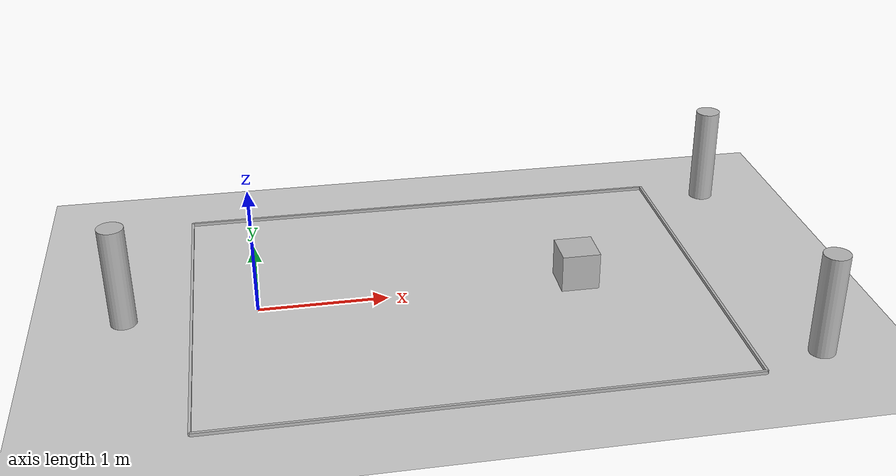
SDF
<?xml version="1.0" ?>
<sdf version="1.6">
  <world name="default">
    <!-- Lighting -->
    <include>
      <uri>model://sun</uri>
    </include>

    <!-- Ground Plane -->
    <include>
      <uri>model://ground_plane</uri>
    </include>

    <model name="opponent_robot">
    <static>false</static>
    <pose>2.5 0 0.15 0 0 0</pose> <!-- Initial position -->
    <link name="body">
        <collision name="collision">
        <geometry>
            <box>
            <size>0.3 0.3 0.3</size>
            </box>
        </geometry>
        </collision>
        <visual name="visual">
        <geometry>
            <box>
            <size>0.3 0.3 0.3</size>
            </box>
        </geometry>
        </visual>
    </link>
    </model>

    <!-- Bottom Border -->
    <model name="bottom_border">
      <static>true</static>
      <pose>1.5 1.5 0.005 0 0 0</pose>
      <link name="link">
        <collision name="collision">
          <geometry>
            <box>
              <size>4 0.02 0.03</size>
            </box>
          </geometry>
        </collision>
        <visual name="visual">
          <geometry>
            <box>
              <size>4 0.02 0.03</size>
            </box>
          </geometry>
        </visual>
      </link>
    </model>

    <!-- Top Border -->
    <model name="top_border">
      <static>true</static>
      <pose>1.5 -1.5 0.005 0 0 0</pose>
      <link name="link">
        <collision name="collision">
          <geometry>
            <box>
              <size>4 0.02 0.03</size>
            </box>
          </geometry>
        </collision>
        <visual name="visual">
          <geometry>
            <box>
              <size>4 0.02 0.03</size>
            </box>
          </geometry>
        </visual>
      </link>
    </model>

    <!-- Left Border -->
    <model name="left_border">
      <static>true</static>
      <pose>-0.5 0 0.005 0 0 1.5707</pose>
      <link name="link">
        <collision name="collision">
          <geometry>
            <box>
              <size>3 0.02 0.03</size>
            </box>
          </geometry>
        </collision>
        <visual name="visual">
          <geometry>
            <box>
              <size>3 0.02 0.03</size>
            </box>
          </geometry>
        </visual>
      </link>
    </model>

    <!-- Right Border -->
    <model name="right_border">
      <static>true</static>
      <pose>3.5 0 0.005 0 0 1.5707</pose>
      <link name="link">
        <collision name="collision">
          <geometry>
            <box>
              <size>3 0.02 0.03</size>
            </box>
          </geometry>
        </collision>
        <visual name="visual">
          <geometry>
            <box>
              <size>3 0.02 0.03</size>
            </box>
          </geometry>
        </visual>
      </link>
    </model>

    <!-- Cylinder Right Top -->
    <model name="cylinder_right_top">
      <static>true</static>
      <pose>4 1.3 0.3 0 0 0</pose>
      <link name="link">
        <collision name="collision">
          <geometry>
            <cylinder>
              <radius>0.1</radius>
              <length>1</length>
            </cylinder>
          </geometry>
        </collision>
        <visual name="visual">
          <geometry>
            <cylinder>
              <radius>0.1</radius>
              <length>1</length>
            </cylinder>
          </geometry>
        </visual>
      </link>
    </model>

    <!-- Cylinder Right Bottom -->
    <model name="cylinder_right_bottom">
      <static>true</static>
      <pose>4 -1.3 0.3 0 0 0</pose>
      <link name="link">
        <collision name="collision">
          <geometry>
            <cylinder>
              <radius>0.1</radius>
              <length>1</length>
            </cylinder>
          </geometry>
        </collision>
        <visual name="visual">
          <geometry>
            <cylinder>
              <radius>0.1</radius>
              <length>1</length>
            </cylinder>
          </geometry>
        </visual>
      </link>
    </model>

    <!-- Cylinder Left Middle -->
    <model name="cylinder_left_middle">
      <static>true</static>
      <pose>-1 0 0.3 0 0 0</pose>
      <link name="link">
        <collision name="collision">
          <geometry>
            <cylinder>
              <radius>0.1</radius>
              <length>1</length>
            </cylinder>
          </geometry>
        </collision>
        <visual name="visual">
          <geometry>
            <cylinder>
              <radius>0.1</radius>
              <length>1</length>
            </cylinder>
          </geometry>
        </visual>
      </link>
    </model>

  </world>
</sdf>
